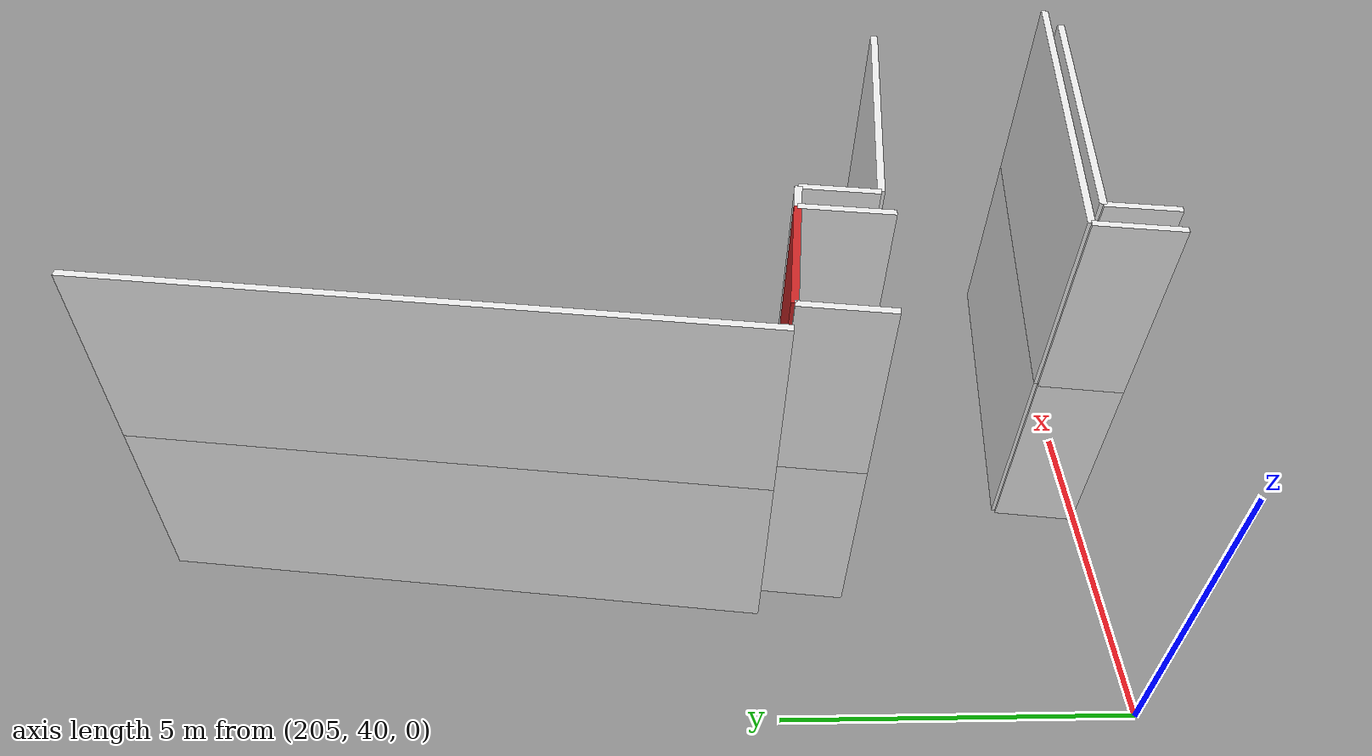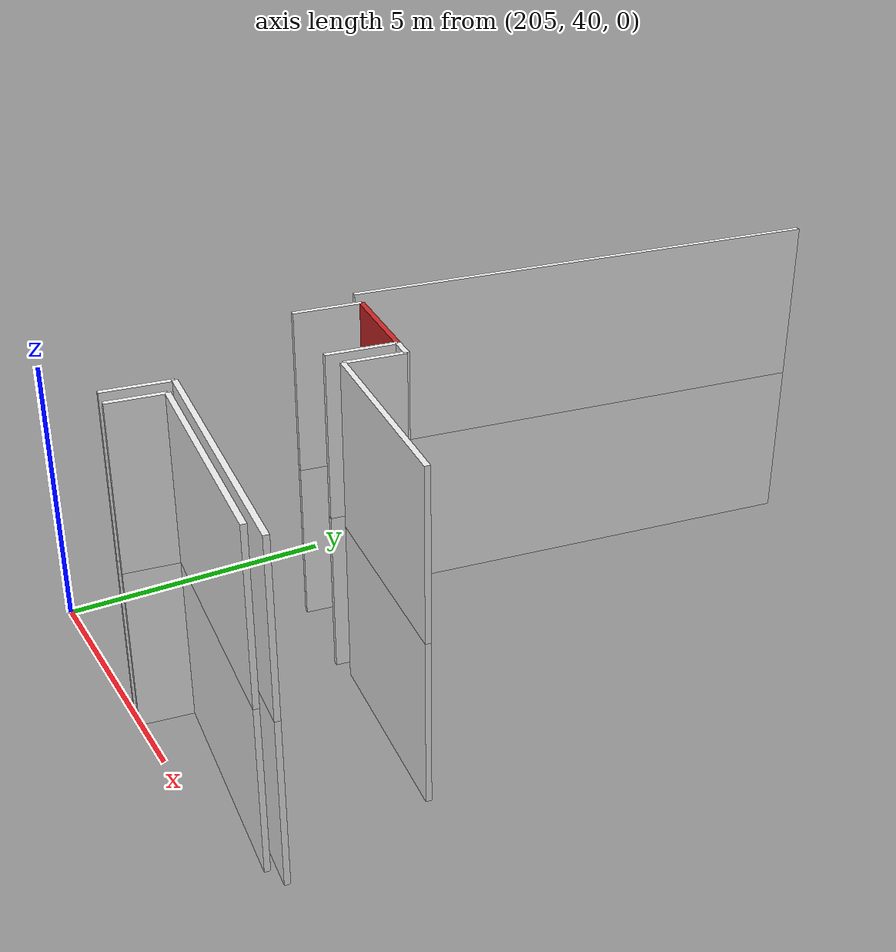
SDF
<sdf version="1.6">
 <world name="default">
  <model name="wall_208.1_45.0_1.5">
   <static>true</static>
   <pose>208.09500000000116 45.0 1.5 0 0 3.0193009299849303</pose>
   <link name="link">
    <visual name="visual">
     <geometry><box><size>1.8034688796345346 0.1 3</size></box></geometry>
     <material>
      <script><uri>file://media/materials/scripts/gazebo.material</uri><name>Gazebo/Red</name></script>
     </material>
    </visual>
    <collision name="collision"><geometry><box><size>1.8034688796345346 0.1 3</size></box></geometry></collision>
   </link>
  </model>
  <model name="wall_208.1_45.0_4.5">
   <static>true</static>
   <pose>208.09500000000116 45.0 4.5 0 0 3.0193009299849303</pose>
   <link name="link">
    <visual name="visual">
     <geometry><box><size>1.8034688796345346 0.1 3</size></box></geometry>
     <material>
      <script><uri>file://media/materials/scripts/gazebo.material</uri><name>Gazebo/Red</name></script>
     </material>
    </visual>
    <collision name="collision"><geometry><box><size>1.8034688796345346 0.1 3</size></box></geometry></collision>
   </link>
  </model>
  <model name="wall_211.1_40.9_1.5">
   <static>true</static>
   <pose>211.09500000000116 40.920000000158325 1.5 0 0 3.0219266671082443</pose>
   <link name="link">
    <visual name="visual">
     <geometry><box><size>5.025942697703559 0.1 3</size></box></geometry>
     <material>
      <script><uri>file://media/materials/scripts/gazebo.material</uri><name>Gazebo/White</name></script>
     </material>
    </visual>
    <collision name="collision"><geometry><box><size>5.025942697703559 0.1 3</size></box></geometry></collision>
   </link>
  </model>
  <model name="wall_208.5_40.6_1.5">
   <static>true</static>
   <pose>208.52499999999418 40.625 1.5 0 0 -1.6961854470647963</pose>
   <link name="link">
    <visual name="visual">
     <geometry><box><size>1.1994165252174924 0.1 3</size></box></geometry>
     <material>
      <script><uri>file://media/materials/scripts/gazebo.material</uri><name>Gazebo/White</name></script>
     </material>
    </visual>
    <collision name="collision"><geometry><box><size>1.1994165252174924 0.1 3</size></box></geometry></collision>
   </link>
  </model>
  <model name="wall_207.1_44.5_1.5">
   <static>true</static>
   <pose>207.125 44.49499999987893 1.5 0 0 1.4494443262036614</pose>
   <link name="link">
    <visual name="visual">
     <geometry><box><size>1.239112585668132 0.1 3</size></box></geometry>
     <material>
      <script><uri>file://media/materials/scripts/gazebo.material</uri><name>Gazebo/White</name></script>
     </material>
    </visual>
    <collision name="collision"><geometry><box><size>1.239112585668132 0.1 3</size></box></geometry></collision>
   </link>
  </model>
  <model name="wall_208.9_44.3_1.5">
   <static>true</static>
   <pose>208.91500000000815 44.265000000130385 1.5 0 0 -1.690225252785692</pose>
   <link name="link">
    <visual name="visual">
     <geometry><box><size>1.258967831197256 0.1 3</size></box></geometry>
     <material>
      <script><uri>file://media/materials/scripts/gazebo.material</uri><name>Gazebo/White</name></script>
     </material>
    </visual>
    <collision name="collision"><geometry><box><size>1.258967831197256 0.1 3</size></box></geometry></collision>
   </link>
  </model>
  <model name="wall_211.1_43.6_1.5">
   <static>true</static>
   <pose>211.0899999999965 43.55999999982305 1.5 0 0 3.021948256785304</pose>
   <link name="link">
    <visual name="visual">
     <geometry><box><size>3.6863532114765336 0.1 3</size></box></geometry>
     <material>
      <script><uri>file://media/materials/scripts/gazebo.material</uri><name>Gazebo/White</name></script>
     </material>
    </visual>
    <collision name="collision"><geometry><box><size>3.6863532114765336 0.1 3</size></box></geometry></collision>
   </link>
  </model>
  <model name="wall_209.3_44.3_1.5">
   <static>true</static>
   <pose>209.32500000001164 44.30999999982305 1.5 0 0 1.4487642084439392</pose>
   <link name="link">
    <visual name="visual">
     <geometry><box><size>1.0679419460437327 0.1 3</size></box></geometry>
     <material>
      <script><uri>file://media/materials/scripts/gazebo.material</uri><name>Gazebo/White</name></script>
     </material>
    </visual>
    <collision name="collision"><geometry><box><size>1.0679419460437327 0.1 3</size></box></geometry></collision>
   </link>
  </model>
  <model name="wall_209.2_44.9_1.5">
   <static>true</static>
   <pose>209.19000000000233 44.86499999999069 1.5 0 0 3.01723765836245</pose>
   <link name="link">
    <visual name="visual">
     <geometry><box><size>0.4031128874726857 0.1 3</size></box></geometry>
     <material>
      <script><uri>file://media/materials/scripts/gazebo.material</uri><name>Gazebo/White</name></script>
     </material>
    </visual>
    <collision name="collision"><geometry><box><size>0.4031128874726857 0.1 3</size></box></geometry></collision>
   </link>
  </model>
  <model name="wall_207.3_49.6_1.5">
   <static>true</static>
   <pose>207.3299999999872 49.59499999997206 1.5 0 0 1.4496339921322956</pose>
   <link name="link">
    <visual name="visual">
     <geometry><box><size>8.935507819578973 0.1 3</size></box></geometry>
     <material>
      <script><uri>file://media/materials/scripts/gazebo.material</uri><name>Gazebo/White</name></script>
     </material>
    </visual>
    <collision name="collision"><geometry><box><size>8.935507819578973 0.1 3</size></box></geometry></collision>
   </link>
  </model>
  <model name="wall_208.9_40.5_1.5">
   <static>true</static>
   <pose>208.9099999999744 40.47500000009313 1.5 0 0 1.4501726582463998</pose>
   <link name="link">
    <visual name="visual">
     <geometry><box><size>0.9972462085370126 0.1 3</size></box></geometry>
     <material>
      <script><uri>file://media/materials/scripts/gazebo.material</uri><name>Gazebo/White</name></script>
     </material>
    </visual>
    <collision name="collision"><geometry><box><size>0.9972462085370126 0.1 3</size></box></geometry></collision>
   </link>
  </model>
  <model name="wall_211.1_40.7_1.5">
   <static>true</static>
   <pose>211.0799999999872 40.72000000020489 1.5 0 0 -0.11793360002921387</pose>
   <link name="link">
    <visual name="visual">
     <geometry><box><size>4.2495176197134965 0.1 3</size></box></geometry>
     <material>
      <script><uri>file://media/materials/scripts/gazebo.material</uri><name>Gazebo/White</name></script>
     </material>
    </visual>
    <collision name="collision"><geometry><box><size>4.2495176197134965 0.1 3</size></box></geometry></collision>
   </link>
  </model>
  <model name="wall_211.1_40.9_4.5">
   <static>true</static>
   <pose>211.09500000000116 40.920000000158325 4.5 0 0 3.0219266671082443</pose>
   <link name="link">
    <visual name="visual">
     <geometry><box><size>5.025942697703559 0.1 3</size></box></geometry>
     <material>
      <script><uri>file://media/materials/scripts/gazebo.material</uri><name>Gazebo/White</name></script>
     </material>
    </visual>
    <collision name="collision"><geometry><box><size>5.025942697703559 0.1 3</size></box></geometry></collision>
   </link>
  </model>
  <model name="wall_208.5_40.6_4.5">
   <static>true</static>
   <pose>208.52499999999418 40.625 4.5 0 0 -1.6961854470647963</pose>
   <link name="link">
    <visual name="visual">
     <geometry><box><size>1.1994165252174924 0.1 3</size></box></geometry>
     <material>
      <script><uri>file://media/materials/scripts/gazebo.material</uri><name>Gazebo/White</name></script>
     </material>
    </visual>
    <collision name="collision"><geometry><box><size>1.1994165252174924 0.1 3</size></box></geometry></collision>
   </link>
  </model>
  <model name="wall_207.1_44.5_4.5">
   <static>true</static>
   <pose>207.125 44.49499999987893 4.5 0 0 1.4494443262036614</pose>
   <link name="link">
    <visual name="visual">
     <geometry><box><size>1.239112585668132 0.1 3</size></box></geometry>
     <material>
      <script><uri>file://media/materials/scripts/gazebo.material</uri><name>Gazebo/White</name></script>
     </material>
    </visual>
    <collision name="collision"><geometry><box><size>1.239112585668132 0.1 3</size></box></geometry></collision>
   </link>
  </model>
  <model name="wall_208.9_44.3_4.5">
   <static>true</static>
   <pose>208.91500000000815 44.265000000130385 4.5 0 0 -1.690225252785692</pose>
   <link name="link">
    <visual name="visual">
     <geometry><box><size>1.258967831197256 0.1 3</size></box></geometry>
     <material>
      <script><uri>file://media/materials/scripts/gazebo.material</uri><name>Gazebo/White</name></script>
     </material>
    </visual>
    <collision name="collision"><geometry><box><size>1.258967831197256 0.1 3</size></box></geometry></collision>
   </link>
  </model>
  <model name="wall_211.1_43.6_4.5">
   <static>true</static>
   <pose>211.0899999999965 43.55999999982305 4.5 0 0 3.021948256785304</pose>
   <link name="link">
    <visual name="visual">
     <geometry><box><size>3.6863532114765336 0.1 3</size></box></geometry>
     <material>
      <script><uri>file://media/materials/scripts/gazebo.material</uri><name>Gazebo/White</name></script>
     </material>
    </visual>
    <collision name="collision"><geometry><box><size>3.6863532114765336 0.1 3</size></box></geometry></collision>
   </link>
  </model>
  <model name="wall_209.3_44.3_4.5">
   <static>true</static>
   <pose>209.32500000001164 44.30999999982305 4.5 0 0 1.4487642084439392</pose>
   <link name="link">
    <visual name="visual">
     <geometry><box><size>1.0679419460437327 0.1 3</size></box></geometry>
     <material>
      <script><uri>file://media/materials/scripts/gazebo.material</uri><name>Gazebo/White</name></script>
     </material>
    </visual>
    <collision name="collision"><geometry><box><size>1.0679419460437327 0.1 3</size></box></geometry></collision>
   </link>
  </model>
  <model name="wall_209.2_44.9_4.5">
   <static>true</static>
   <pose>209.19000000000233 44.86499999999069 4.5 0 0 3.01723765836245</pose>
   <link name="link">
    <visual name="visual">
     <geometry><box><size>0.4031128874726857 0.1 3</size></box></geometry>
     <material>
      <script><uri>file://media/materials/scripts/gazebo.material</uri><name>Gazebo/White</name></script>
     </material>
    </visual>
    <collision name="collision"><geometry><box><size>0.4031128874726857 0.1 3</size></box></geometry></collision>
   </link>
  </model>
  <model name="wall_207.3_49.6_4.5">
   <static>true</static>
   <pose>207.3299999999872 49.59499999997206 4.5 0 0 1.4496339921322956</pose>
   <link name="link">
    <visual name="visual">
     <geometry><box><size>8.935507819578973 0.1 3</size></box></geometry>
     <material>
      <script><uri>file://media/materials/scripts/gazebo.material</uri><name>Gazebo/White</name></script>
     </material>
    </visual>
    <collision name="collision"><geometry><box><size>8.935507819578973 0.1 3</size></box></geometry></collision>
   </link>
  </model>
  <model name="wall_208.9_40.5_4.5">
   <static>true</static>
   <pose>208.9099999999744 40.47500000009313 4.5 0 0 1.4501726582463998</pose>
   <link name="link">
    <visual name="visual">
     <geometry><box><size>0.9972462085370126 0.1 3</size></box></geometry>
     <material>
      <script><uri>file://media/materials/scripts/gazebo.material</uri><name>Gazebo/White</name></script>
     </material>
    </visual>
    <collision name="collision"><geometry><box><size>0.9972462085370126 0.1 3</size></box></geometry></collision>
   </link>
  </model>
  <model name="wall_211.1_40.7_4.5">
   <static>true</static>
   <pose>211.0799999999872 40.72000000020489 4.5 0 0 -0.11793360002921387</pose>
   <link name="link">
    <visual name="visual">
     <geometry><box><size>4.2495176197134965 0.1 3</size></box></geometry>
     <material>
      <script><uri>file://media/materials/scripts/gazebo.material</uri><name>Gazebo/White</name></script>
     </material>
    </visual>
    <collision name="collision"><geometry><box><size>4.2495176197134965 0.1 3</size></box></geometry></collision>
   </link>
  </model>
 </world>
</sdf>
